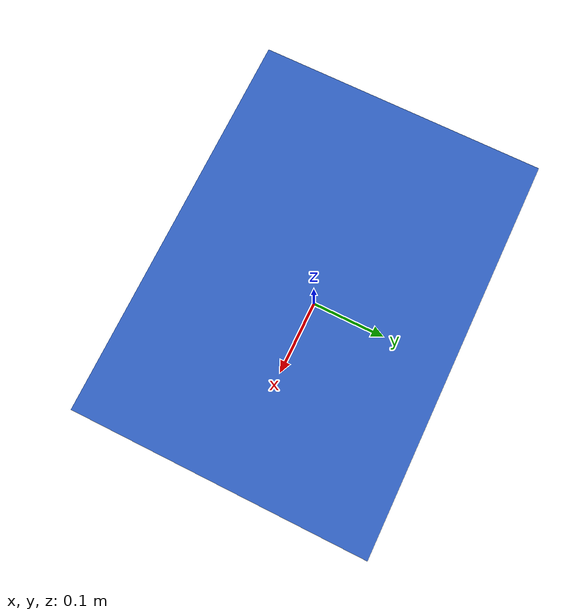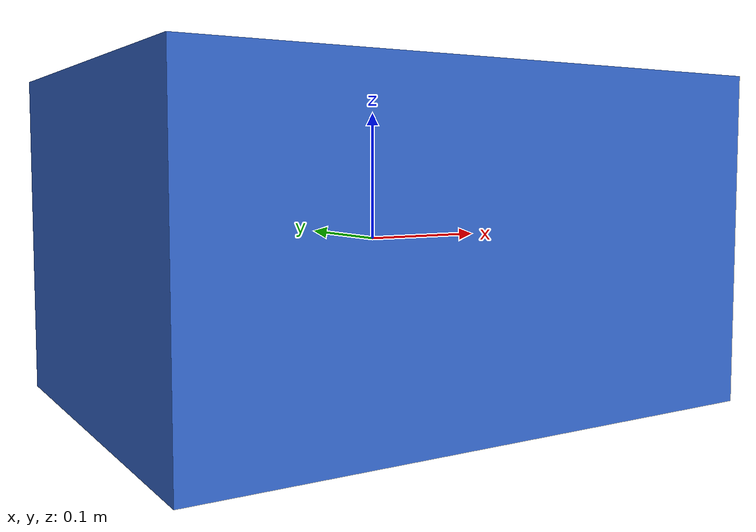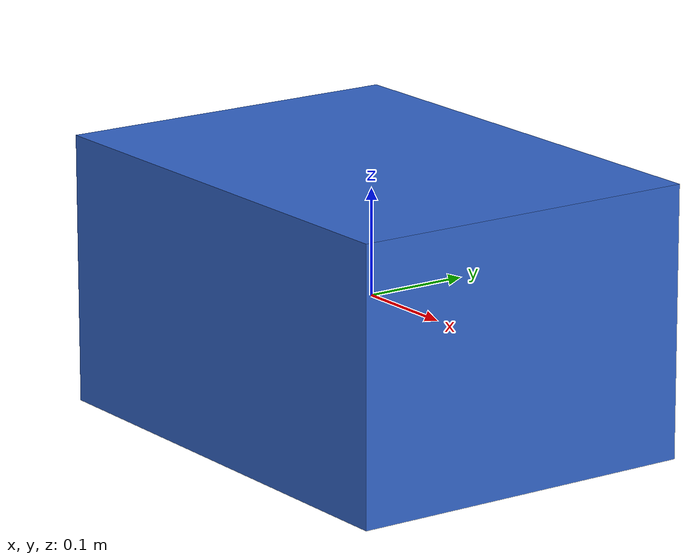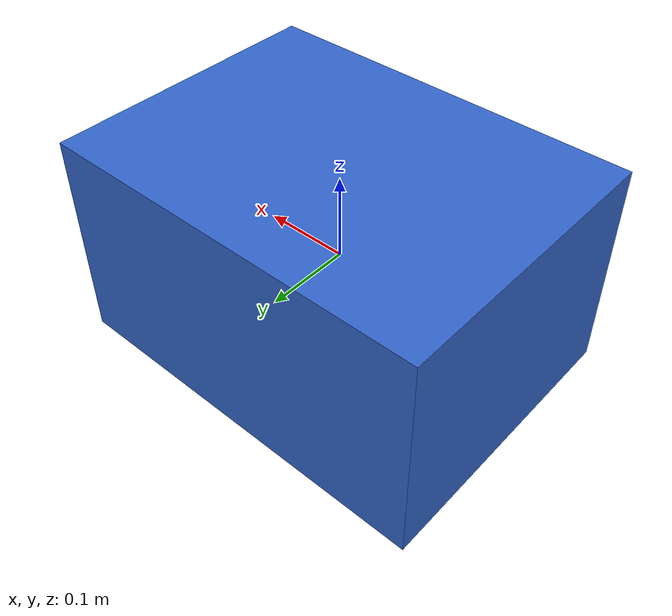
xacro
<?xml version="1.0"?>
<robot xmlns:xacro="http://www.ros.org/wiki/xacro" name="chatboat_uvms">

  <!-- BlueROV2 Heavy only (no arm) — stability test -->

  <xacro:include filename="$(find chatboat_description)/urdf/bluerov2.urdf.xacro"/>

  <xacro:arg name="namespace" default="chatboat"/>

  <!-- World frame (NED) -->
  <link name="world"/>
  <joint name="world_to_base" type="floating">
    <parent link="world"/>
    <child link="$(arg namespace)/base_link"/>
  </joint>

  <!-- Instantiate vehicle -->
  <xacro:bluerov2 namespace="$(arg namespace)"/>

</robot>

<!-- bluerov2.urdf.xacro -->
<robot xmlns:xacro="http://www.ros.org/wiki/xacro">
  <xacro:macro name="bluerov2" params="namespace:=chatboat">
    <link name="${namespace}/base_link">
      <visual>
        <geometry><box size="0.457 0.338 0.254"/></geometry>
        <material name="blue"><color rgba="0.2 0.4 0.8 1.0"/></material>
      </visual>
      <collision>
        <geometry><box size="0.457 0.338 0.254"/></geometry>
      </collision>
      <inertial>
        <mass value="11.0"/>
        <inertia ixx="0.16" ixy="0" ixz="0" iyy="0.16" iyz="0" izz="0.16"/>
      </inertial>
    </link>
  </xacro:macro>
</robot>
